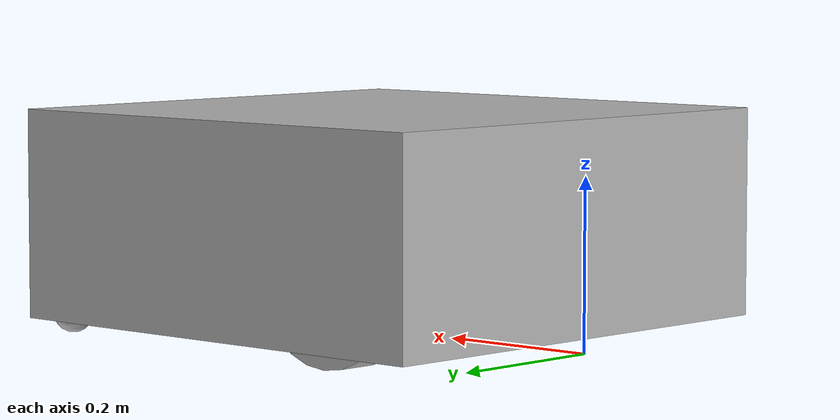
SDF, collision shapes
<?xml version='1.0'?>
<sdf version="1.6">
  <model name="assembly5">
    <link name="chassis">
      <pose frame="">0 0 0 0 0 0</pose>
      <inertial>
        <mass>13.741</mass>
        <pose frame="">0.269694 0.006877 0.146243 0 -0 0</pose>
        <inertia>
          <ixx>0.664203</ixx>
          <ixy>-0.011219</ixy>
          <ixz>-0.006052</ixz>
          <iyy>0.604736</iyy>
          <iyz>0.002064</iyz>
          <izz>1.054715</izz>
        </inertia>
      </inertial>
      <visual name="visual">
        <pose frame="">0 0 0.017 1.5708 0 -1.5708</pose>
        <geometry>
          <mesh>
            <uri>model://assembly5/meshes/Assembly5.stl</uri>
            <scale>1 1 1</scale>
          </mesh>
        </geometry>
      </visual>
      <collision name="collision">
        <pose frame="">0.3 0 0.1405 0 -0 0</pose>
        <geometry>
          <box>
            <size>0.6 0.6 0.247</size>
          </box>
        </geometry>
      </collision>
      <collision name="caster1_collision">
        <pose>0.5635 0.2635 0.024118 0 -0 0</pose>
        <geometry>
          <sphere>
            <radius>0.024118</radius>
          </sphere>
        </geometry>
        <surface>
          <friction>
            <ode>
              <mu>0</mu>
              <mu2>0</mu2>
              <slip1>1.0</slip1>
              <slip2>1.0</slip2>
            </ode>
          </friction>
        </surface>
      </collision>
      <collision name="caster2_collision">
        <pose>0.5635 -0.2635 0.024118 0 -0 0</pose>
        <geometry>
          <sphere>
            <radius>0.024118</radius>
          </sphere>
        </geometry>
        <surface>
          <friction>
            <ode>
              <mu>0</mu>
              <mu2>0</mu2>
              <slip1>1.0</slip1>
              <slip2>1.0</slip2>
            </ode>
          </friction>
        </surface>
      </collision>
    </link>
    <link name="left_wheel">
      <pose frame="">0.125 0.265 0.1 0 -0 0</pose>
      <inertial>
        <mass>1.79</mass>
      </inertial>
      <visual name="visual">
        <pose frame="">0 0 0 1.5708 -0 -1.5708</pose>
        <geometry>
          <mesh>
            <uri>model://assembly5/meshes/Wheel.stl</uri>
            <scale>1 1 1</scale>
          </mesh>
        </geometry>
      </visual>
      <collision name="collision">
        <pose frame="">0 0 0 1.5708 -0 0</pose>
        <geometry>
          <cylinder>
            <radius>0.1</radius>
            <length>0.05</length>
          </cylinder>
        </geometry>
        <surface>
          <friction>
            <ode>
              <mu>1</mu>
              <mu2>1</mu2>
              <slip1>0</slip1>
              <slip2>0</slip2>
            </ode>
          </friction>
        </surface>
      </collision>
    </link>
    <link name="right_wheel">
      <pose frame="">0.125 -0.265 0.1 0 -0 0</pose>
      <inertial>
        <mass>1.79</mass>
      </inertial>
      <visual name="visual">
        <pose frame="">0 0 0 1.5708 -0 1.5708</pose>
        <geometry>
          <mesh>
            <uri>model://assembly5/meshes/Wheel.stl</uri>
            <scale>1 1 1</scale>
          </mesh>
        </geometry>
      </visual>
      <collision name="collision">
        <pose frame="">0 0 0 1.5708 -0 0</pose>
        <geometry>
          <cylinder>
            <radius>0.1</radius>
            <length>0.05</length>
          </cylinder>
        </geometry>
        <surface>
          <friction>
            <ode>
              <mu>1</mu>
              <mu2>1</mu2>
              <slip1>0</slip1>
              <slip2>0</slip2>
            </ode>
          </friction>
        </surface>
      </collision>
    </link>
    <joint name="left_wheel_hinge" type="revolute">
      <parent>chassis</parent>
      <child>left_wheel</child>
      <pose frame="">0 0 0 0 -0 0</pose>
      <axis>
        <xyz>0 1 0</xyz>
      </axis>
    </joint>
    <joint name="right_wheel_hinge" type="revolute">
      <parent>chassis</parent>
      <child>right_wheel</child>
      <pose frame="">0 0 0 0 -0 0</pose>
      <axis>
        <xyz>0 1 0</xyz>
      </axis>
    </joint>

    <plugin filename="libgazebo_wheel_encoder.so" name="wheel_encoder">
      <updateRate>20</updateRate>
      <leftJoint>left_wheel_hinge</leftJoint>
      <rightJoint>right_wheel_hinge</rightJoint>
    </plugin>

    <plugin filename="libgazebo_ros_diff_drive.so" name="differential_drive_controller">
      <robotBaseFrame>chassis</robotBaseFrame>
      <legacyMode>false</legacyMode>
      <alwaysOn>true</alwaysOn>
      <updateRate>20</updateRate>
      <leftJoint>left_wheel_hinge</leftJoint>
      <rightJoint>right_wheel_hinge</rightJoint>
      <wheelSeparation>0.518</wheelSeparation>
      <wheelDiameter>0.2</wheelDiameter>
      <torque>200</torque>
      <commandTopic>/cmd_vel</commandTopic>
    </plugin>
  </model>
</sdf>
